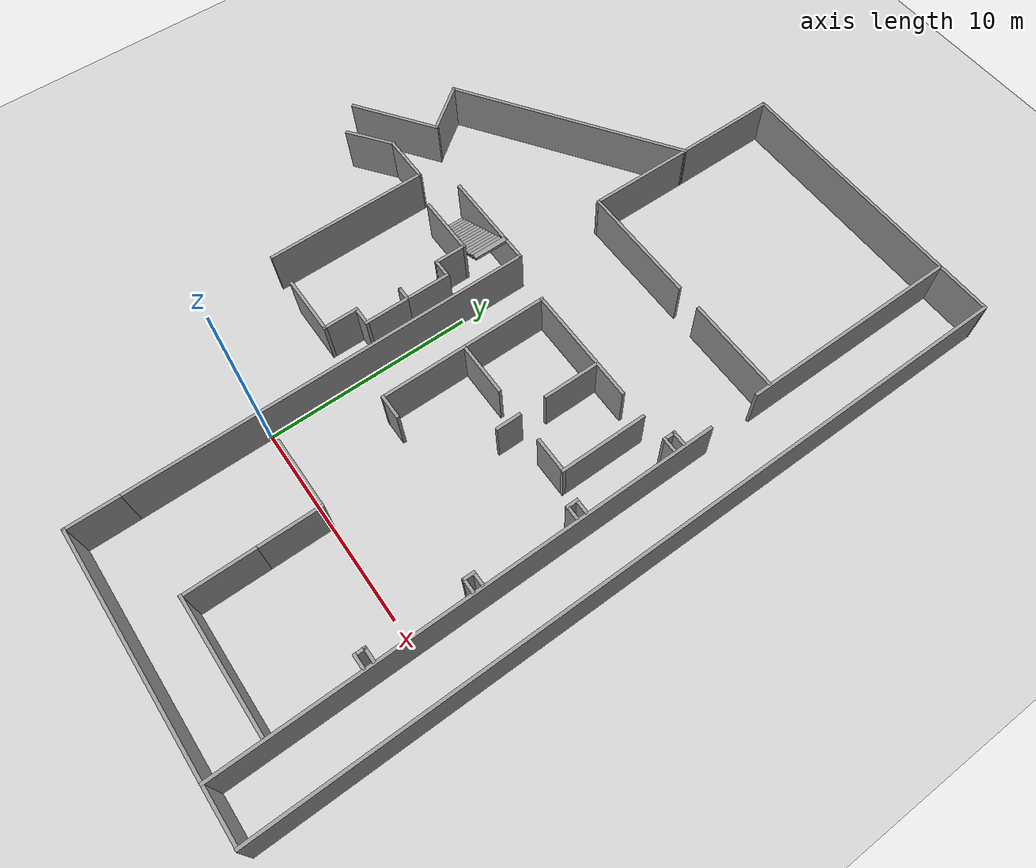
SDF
<sdf version="1.7">
 <world name="default">
  <light name="sun" type="directional">
   <pose>0 0 10 0 -0 0</pose>
   <diffuse>0.8 0.8 0.8 1</diffuse>
   <specular>0.2 0.2 0.2 1</specular>
   <attenuation>
    <range>1000</range>
    <constant>0.9</constant>
    <linear>0.01</linear>
    <quadratic>0.001</quadratic>
   </attenuation>
   <direction>-0.5 0.1 -0.9</direction>
   <spot><inner_angle>0</inner_angle><outer_angle>0</outer_angle><falloff>0</falloff></spot>
  </light>
  <model name="ground_plane">
   <static>1</static>
   <link name="link">
    <collision name="collision">
     <geometry><plane><normal>0 0 1</normal><size>100 100</size></plane></geometry>
     <surface>
      <contact><collide_bitmask>65535</collide_bitmask></contact>
      <friction><ode><mu>100</mu><mu2>50</mu2></ode></friction>
     </surface>
    </collision>
    <visual name="visual">
     <cast_shadows>0</cast_shadows>
     <geometry><plane><normal>0 0 1</normal><size>100 100</size></plane></geometry>
     <material>
      <script><uri>file://media/materials/scripts/gazebo.material</uri><name>Gazebo/Grey</name></script>
     </material>
    </visual>
   </link>
  </model>
  <gravity>0 0 -9.8</gravity>
  <magnetic_field>6e-06 2.3e-05 -4.2e-05</magnetic_field>
  <atmosphere type="adiabatic"/>
  <physics type="ode">
   <max_step_size>0.001</max_step_size>
   <real_time_factor>1</real_time_factor>
   <real_time_update_rate>1000</real_time_update_rate>
  </physics>
  <scene><ambient>0.4 0.4 0.4 1</ambient><background>0.7 0.7 0.7 1</background><shadows>1</shadows></scene>
  <spherical_coordinates>
   <surface_model>EARTH_WGS84</surface_model>
   <latitude_deg>0</latitude_deg>
   <longitude_deg>0</longitude_deg>
   <elevation>0</elevation>
   <heading_deg>0</heading_deg>
  </spherical_coordinates>
  <model name="plan1">
   <pose>1.10898 9.73229 0 0 -0 0</pose>
   <link name="Stairs_2">
    <visual name="Stairs_2_Visual_0">
     <pose>-5.78382 2.74089 0.083333 0 -0 1.5708</pose>
     <geometry><box><size>1.71686 0.252577 0.166667</size></box></geometry>
     <material>
      <script><uri>file://media/materials/scripts/gazebo.material</uri><name>Gazebo/Grey</name></script>
      <ambient>1 1 1 1</ambient>
     </material>
     <meta><layer>0</layer></meta>
    </visual>
    <collision name="Stairs_2_Collision_0">
     <geometry><box><size>1.71686 0.252577 0.166667</size></box></geometry>
     <pose>-5.78382 2.74089 0.083333 0 -0 1.5708</pose>
    </collision>
    <visual name="Stairs_2_Visual_1">
     <pose>-5.53125 2.74089 0.25 0 -0 1.5708</pose>
     <geometry><box><size>1.71686 0.252577 0.166667</size></box></geometry>
     <material>
      <script><uri>file://media/materials/scripts/gazebo.material</uri><name>Gazebo/Grey</name></script>
      <ambient>1 1 1 1</ambient>
     </material>
     <meta><layer>0</layer></meta>
    </visual>
    <collision name="Stairs_2_Collision_1">
     <geometry><box><size>1.71686 0.252577 0.166667</size></box></geometry>
     <pose>-5.53125 2.74089 0.25 0 -0 1.5708</pose>
    </collision>
    <visual name="Stairs_2_Visual_2">
     <pose>-5.27867 2.74089 0.416667 0 -0 1.5708</pose>
     <geometry><box><size>1.71686 0.252577 0.166667</size></box></geometry>
     <material>
      <script><uri>file://media/materials/scripts/gazebo.material</uri><name>Gazebo/Grey</name></script>
      <ambient>1 1 1 1</ambient>
     </material>
     <meta><layer>0</layer></meta>
    </visual>
    <collision name="Stairs_2_Collision_2">
     <geometry><box><size>1.71686 0.252577 0.166667</size></box></geometry>
     <pose>-5.27867 2.74089 0.416667 0 -0 1.5708</pose>
    </collision>
    <visual name="Stairs_2_Visual_3">
     <pose>-5.02609 2.74089 0.583333 0 -0 1.5708</pose>
     <geometry><box><size>1.71686 0.252577 0.166667</size></box></geometry>
     <material>
      <script><uri>file://media/materials/scripts/gazebo.material</uri><name>Gazebo/Grey</name></script>
      <ambient>1 1 1 1</ambient>
     </material>
     <meta><layer>0</layer></meta>
    </visual>
    <collision name="Stairs_2_Collision_3">
     <geometry><box><size>1.71686 0.252577 0.166667</size></box></geometry>
     <pose>-5.02609 2.74089 0.583333 0 -0 1.5708</pose>
    </collision>
    <visual name="Stairs_2_Visual_4">
     <pose>-4.77351 2.74089 0.75 0 -0 1.5708</pose>
     <geometry><box><size>1.71686 0.252577 0.166667</size></box></geometry>
     <material>
      <script><uri>file://media/materials/scripts/gazebo.material</uri><name>Gazebo/Grey</name></script>
      <ambient>1 1 1 1</ambient>
     </material>
     <meta><layer>0</layer></meta>
    </visual>
    <collision name="Stairs_2_Collision_4">
     <geometry><box><size>1.71686 0.252577 0.166667</size></box></geometry>
     <pose>-4.77351 2.74089 0.75 0 -0 1.5708</pose>
    </collision>
    <visual name="Stairs_2_Visual_5">
     <pose>-4.52094 2.74089 0.916667 0 -0 1.5708</pose>
     <geometry><box><size>1.71686 0.252577 0.166667</size></box></geometry>
     <material>
      <script><uri>file://media/materials/scripts/gazebo.material</uri><name>Gazebo/Grey</name></script>
      <ambient>1 1 1 1</ambient>
     </material>
     <meta><layer>0</layer></meta>
    </visual>
    <collision name="Stairs_2_Collision_5">
     <geometry><box><size>1.71686 0.252577 0.166667</size></box></geometry>
     <pose>-4.52094 2.74089 0.916667 0 -0 1.5708</pose>
    </collision>
    <visual name="Stairs_2_Visual_6">
     <pose>-4.26836 2.74089 1.08333 0 -0 1.5708</pose>
     <geometry><box><size>1.71686 0.252577 0.166667</size></box></geometry>
     <material>
      <script><uri>file://media/materials/scripts/gazebo.material</uri><name>Gazebo/Grey</name></script>
      <ambient>1 1 1 1</ambient>
     </material>
     <meta><layer>0</layer></meta>
    </visual>
    <collision name="Stairs_2_Collision_6">
     <geometry><box><size>1.71686 0.252577 0.166667</size></box></geometry>
     <pose>-4.26836 2.74089 1.08333 0 -0 1.5708</pose>
    </collision>
    <visual name="Stairs_2_Visual_7">
     <pose>-4.01578 2.74089 1.25 0 -0 1.5708</pose>
     <geometry><box><size>1.71686 0.252577 0.166667</size></box></geometry>
     <material>
      <script><uri>file://media/materials/scripts/gazebo.material</uri><name>Gazebo/Grey</name></script>
      <ambient>1 1 1 1</ambient>
     </material>
     <meta><layer>0</layer></meta>
    </visual>
    <collision name="Stairs_2_Collision_7">
     <geometry><box><size>1.71686 0.252577 0.166667</size></box></geometry>
     <pose>-4.01578 2.74089 1.25 0 -0 1.5708</pose>
    </collision>
    <visual name="Stairs_2_Visual_8">
     <pose>-3.76321 2.74089 1.41667 0 -0 1.5708</pose>
     <geometry><box><size>1.71686 0.252577 0.166667</size></box></geometry>
     <material>
      <script><uri>file://media/materials/scripts/gazebo.material</uri><name>Gazebo/Grey</name></script>
      <ambient>1 1 1 1</ambient>
     </material>
     <meta><layer>0</layer></meta>
    </visual>
    <collision name="Stairs_2_Collision_8">
     <geometry><box><size>1.71686 0.252577 0.166667</size></box></geometry>
     <pose>-3.76321 2.74089 1.41667 0 -0 1.5708</pose>
    </collision>
    <visual name="Stairs_2_Visual_9">
     <pose>-3.51063 2.74089 1.58333 0 -0 1.5708</pose>
     <geometry><box><size>1.71686 0.252577 0.166667</size></box></geometry>
     <material>
      <script><uri>file://media/materials/scripts/gazebo.material</uri><name>Gazebo/Grey</name></script>
      <ambient>1 1 1 1</ambient>
     </material>
     <meta><layer>0</layer></meta>
    </visual>
    <collision name="Stairs_2_Collision_9">
     <geometry><box><size>1.71686 0.252577 0.166667</size></box></geometry>
     <pose>-3.51063 2.74089 1.58333 0 -0 1.5708</pose>
    </collision>
    <visual name="Stairs_2_Visual_10">
     <pose>-3.25805 2.74089 1.75 0 -0 1.5708</pose>
     <geometry><box><size>1.71686 0.252577 0.166667</size></box></geometry>
     <material>
      <script><uri>file://media/materials/scripts/gazebo.material</uri><name>Gazebo/Grey</name></script>
      <ambient>1 1 1 1</ambient>
     </material>
     <meta><layer>0</layer></meta>
    </visual>
    <collision name="Stairs_2_Collision_10">
     <geometry><box><size>1.71686 0.252577 0.166667</size></box></geometry>
     <pose>-3.25805 2.74089 1.75 0 -0 1.5708</pose>
    </collision>
    <visual name="Stairs_2_Visual_11">
     <pose>-3.00547 2.74089 1.91667 0 -0 1.5708</pose>
     <geometry><box><size>1.71686 0.252577 0.166667</size></box></geometry>
     <material>
      <script><uri>file://media/materials/scripts/gazebo.material</uri><name>Gazebo/Grey</name></script>
      <ambient>1 1 1 1</ambient>
     </material>
     <meta><layer>0</layer></meta>
    </visual>
    <collision name="Stairs_2_Collision_11">
     <geometry><box><size>1.71686 0.252577 0.166667</size></box></geometry>
     <pose>-3.00547 2.74089 1.91667 0 -0 1.5708</pose>
    </collision>
    <visual name="Stairs_2_Visual_12">
     <pose>-2.7529 2.74089 2.08333 0 -0 1.5708</pose>
     <geometry><box><size>1.71686 0.252577 0.166667</size></box></geometry>
     <material>
      <script><uri>file://media/materials/scripts/gazebo.material</uri><name>Gazebo/Grey</name></script>
      <ambient>1 1 1 1</ambient>
     </material>
     <meta><layer>0</layer></meta>
    </visual>
    <collision name="Stairs_2_Collision_12">
     <geometry><box><size>1.71686 0.252577 0.166667</size></box></geometry>
     <pose>-2.7529 2.74089 2.08333 0 -0 1.5708</pose>
    </collision>
    <visual name="Stairs_2_Visual_13">
     <pose>-2.50032 2.74089 2.25 0 -0 1.5708</pose>
     <geometry><box><size>1.71686 0.252577 0.166667</size></box></geometry>
     <material>
      <script><uri>file://media/materials/scripts/gazebo.material</uri><name>Gazebo/Grey</name></script>
      <ambient>1 1 1 1</ambient>
     </material>
     <meta><layer>0</layer></meta>
    </visual>
    <collision name="Stairs_2_Collision_13">
     <geometry><box><size>1.71686 0.252577 0.166667</size></box></geometry>
     <pose>-2.50032 2.74089 2.25 0 -0 1.5708</pose>
    </collision>
    <visual name="Stairs_2_Visual_14">
     <pose>-2.24774 2.74089 2.41667 0 -0 1.5708</pose>
     <geometry><box><size>1.71686 0.252577 0.166667</size></box></geometry>
     <material>
      <script><uri>file://media/materials/scripts/gazebo.material</uri><name>Gazebo/Grey</name></script>
      <ambient>1 1 1 1</ambient>
     </material>
     <meta><layer>0</layer></meta>
    </visual>
    <collision name="Stairs_2_Collision_14">
     <geometry><box><size>1.71686 0.252577 0.166667</size></box></geometry>
     <pose>-2.24774 2.74089 2.41667 0 -0 1.5708</pose>
    </collision>
   </link>
   <link name="Wall_102">
    <collision name="Wall_102_Collision">
     <geometry><box><size>1.6 0.15 2.5</size></box></geometry>
     <pose>0 0 1.25 0 -0 0</pose>
    </collision>
    <visual name="Wall_102_Visual">
     <pose>0 0 1.25 0 -0 0</pose>
     <geometry><box><size>1.6 0.15 2.5</size></box></geometry>
     <material>
      <script><uri>file://media/materials/scripts/gazebo.material</uri><name>Gazebo/Grey</name></script>
      <ambient>1 1 1 1</ambient>
     </material>
     <meta><layer>0</layer></meta>
    </visual>
    <pose>-3.01553 1.09256 0 0 -0 1.5708</pose>
   </link>
   <link name="Wall_104">
    <collision name="Wall_104_Collision">
     <geometry><box><size>3 0.15 2.5</size></box></geometry>
     <pose>0 0 1.25 0 -0 0</pose>
    </collision>
    <visual name="Wall_104_Visual">
     <pose>0 0 1.25 0 -0 0</pose>
     <geometry><box><size>3 0.15 2.5</size></box></geometry>
     <material>
      <script><uri>file://media/materials/scripts/gazebo.material</uri><name>Gazebo/Grey</name></script>
      <ambient>1 1 1 1</ambient>
     </material>
     <meta><layer>0</layer></meta>
    </visual>
    <pose>-4.44053 1.81756 0 0 -0 3.14159</pose>
   </link>
   <link name="Wall_108">
    <collision name="Wall_108_Collision">
     <geometry><box><size>5.9 0.15 2.5</size></box></geometry>
     <pose>0 0 1.25 0 -0 0</pose>
    </collision>
    <visual name="Wall_108_Visual">
     <pose>0 0 1.25 0 -0 0</pose>
     <geometry><box><size>5.9 0.15 2.5</size></box></geometry>
     <material>
      <script><uri>file://media/materials/scripts/gazebo.material</uri><name>Gazebo/Grey</name></script>
      <ambient>1 1 1 1</ambient>
     </material>
     <meta><layer>0</layer></meta>
    </visual>
    <pose>4.21747 3.02356 0 0 -0 0</pose>
   </link>
   <link name="Wall_110">
    <collision name="Wall_110_Collision">
     <geometry><box><size>4.25 0.15 2.5</size></box></geometry>
     <pose>0 0 1.25 0 -0 0</pose>
    </collision>
    <visual name="Wall_110_Visual">
     <pose>0 0 1.25 0 -0 0</pose>
     <geometry><box><size>4.25 0.15 2.5</size></box></geometry>
     <material>
      <script><uri>file://media/materials/scripts/gazebo.material</uri><name>Gazebo/Grey</name></script>
      <ambient>1 1 1 1</ambient>
     </material>
     <meta><layer>0</layer></meta>
    </visual>
    <pose>1.34247 0.973558 0 0 -0 -1.5708</pose>
   </link>
   <link name="Wall_112">
    <collision name="Wall_112_Collision">
     <geometry><box><size>4.25 0.15 2.5</size></box></geometry>
     <pose>0 0 1.25 0 -0 0</pose>
    </collision>
    <visual name="Wall_112_Visual">
     <pose>0 0 1.25 0 -0 0</pose>
     <geometry><box><size>4.25 0.15 2.5</size></box></geometry>
     <material>
      <script><uri>file://media/materials/scripts/gazebo.material</uri><name>Gazebo/Grey</name></script>
      <ambient>1 1 1 1</ambient>
     </material>
     <meta><layer>0</layer></meta>
    </visual>
    <pose>1.34247 -3.12644 0 0 -0 -1.5708</pose>
   </link>
   <link name="Wall_113">
    <collision name="Wall_113_Collision">
     <geometry><box><size>1.25 0.15 2.5</size></box></geometry>
     <pose>0 0 1.25 0 -0 0</pose>
    </collision>
    <visual name="Wall_113_Visual">
     <pose>0 0 1.25 0 -0 0</pose>
     <geometry><box><size>1.25 0.15 2.5</size></box></geometry>
     <material>
      <script><uri>file://media/materials/scripts/gazebo.material</uri><name>Gazebo/Grey</name></script>
      <ambient>1 1 1 1</ambient>
     </material>
     <meta><layer>0</layer></meta>
    </visual>
    <pose>1.89247 -5.17644 0 0 -0 0</pose>
   </link>
   <link name="Wall_115">
    <collision name="Wall_115_Collision">
     <geometry><box><size>2.75 0.15 2.5</size></box></geometry>
     <pose>0 0 1.25 0 -0 0</pose>
    </collision>
    <visual name="Wall_115_Visual">
     <pose>0 0 1.25 0 -0 0</pose>
     <geometry><box><size>2.75 0.15 2.5</size></box></geometry>
     <material>
      <script><uri>file://media/materials/scripts/gazebo.material</uri><name>Gazebo/Grey</name></script>
      <ambient>1 1 1 1</ambient>
     </material>
     <meta><layer>0</layer></meta>
    </visual>
    <pose>2.64247 -1.07644 0 0 -0 0</pose>
   </link>
   <link name="Wall_117">
    <collision name="Wall_117_Collision">
     <geometry><box><size>2.75 0.15 2.5</size></box></geometry>
     <pose>0 0 1.25 0 -0 0</pose>
    </collision>
    <visual name="Wall_117_Visual">
     <pose>0 0 1.25 0 -0 0</pose>
     <geometry><box><size>2.75 0.15 2.5</size></box></geometry>
     <material>
      <script><uri>file://media/materials/scripts/gazebo.material</uri><name>Gazebo/Grey</name></script>
      <ambient>1 1 1 1</ambient>
     </material>
     <meta><layer>0</layer></meta>
    </visual>
    <pose>5.34473 1.63895 0 0 -0 1.5708</pose>
   </link>
   <link name="Wall_119">
    <collision name="Wall_119_Collision">
     <geometry><box><size>1.25 0.15 2.5</size></box></geometry>
     <pose>0 0 1.25 0 -0 0</pose>
    </collision>
    <visual name="Wall_119_Visual">
     <pose>0 0 1.25 0 -0 0</pose>
     <geometry><box><size>1.25 0.15 2.5</size></box></geometry>
     <material>
      <script><uri>file://media/materials/scripts/gazebo.material</uri><name>Gazebo/Grey</name></script>
      <ambient>1 1 1 1</ambient>
     </material>
     <meta><layer>0</layer></meta>
    </visual>
    <pose>5.36213 -1.59766 0 0 -0 -1.5708</pose>
   </link>
   <link name="Wall_122">
    <collision name="Wall_122_Collision">
     <geometry><box><size>4.25 0.15 2.5</size></box></geometry>
     <pose>0 0 1.25 0 -0 0</pose>
    </collision>
    <visual name="Wall_122_Visual">
     <pose>0 0 1.25 0 -0 0</pose>
     <geometry><box><size>4.25 0.15 2.5</size></box></geometry>
     <material>
      <script><uri>file://media/materials/scripts/gazebo.material</uri><name>Gazebo/Grey</name></script>
      <ambient>1 1 1 1</ambient>
     </material>
     <meta><layer>0</layer></meta>
    </visual>
    <pose>8.46039 0.972506 0 0 -0 -1.57076</pose>
   </link>
   <link name="Wall_124">
    <collision name="Wall_124_Collision">
     <geometry><box><size>1.8 0.15 2.5</size></box></geometry>
     <pose>0 0 1.25 0 -0 0</pose>
    </collision>
    <visual name="Wall_124_Visual">
     <pose>0 0 1.25 0 -0 0</pose>
     <geometry><box><size>1.8 0.15 2.5</size></box></geometry>
     <material>
      <script><uri>file://media/materials/scripts/gazebo.material</uri><name>Gazebo/Grey</name></script>
      <ambient>1 1 1 1</ambient>
     </material>
     <meta><layer>0</layer></meta>
    </visual>
    <pose>7.63547 -1.07744 0 0 -0 3.14159</pose>
   </link>
   <link name="Wall_126">
    <collision name="Wall_126_Collision">
     <geometry><box><size>0.75 0.15 2.5</size></box></geometry>
     <pose>0 0 1.25 0 -0 0</pose>
    </collision>
    <visual name="Wall_126_Visual">
     <pose>0 0 1.25 0 -0 0</pose>
     <geometry><box><size>0.75 0.15 2.5</size></box></geometry>
     <material>
      <script><uri>file://media/materials/scripts/gazebo.material</uri><name>Gazebo/Grey</name></script>
      <ambient>1 1 1 1</ambient>
     </material>
     <meta><layer>0</layer></meta>
    </visual>
    <pose>10.1077 3.59199 0 0 -0 3.14159</pose>
   </link>
   <link name="Wall_127">
    <collision name="Wall_127_Collision">
     <geometry><box><size>0.641785 0.15 2.5</size></box></geometry>
     <pose>0 0 1.25 0 -0 0</pose>
    </collision>
    <visual name="Wall_127_Visual">
     <pose>0 0 1.25 0 -0 0</pose>
     <geometry><box><size>0.641785 0.15 2.5</size></box></geometry>
     <material>
      <script><uri>file://media/materials/scripts/gazebo.material</uri><name>Gazebo/Grey</name></script>
      <ambient>1 1 1 1</ambient>
     </material>
     <meta><layer>0</layer></meta>
    </visual>
    <pose>9.79998 3.3464 0 0 -0 -1.56586</pose>
   </link>
   <link name="Wall_128">
    <collision name="Wall_128_Collision">
     <geometry><box><size>0.75 0.15 2.5</size></box></geometry>
     <pose>0 0 1.25 0 -0 0</pose>
    </collision>
    <visual name="Wall_128_Visual">
     <pose>0 0 1.25 0 -0 0</pose>
     <geometry><box><size>0.75 0.15 2.5</size></box></geometry>
     <material>
      <script><uri>file://media/materials/scripts/gazebo.material</uri><name>Gazebo/Grey</name></script>
      <ambient>1 1 1 1</ambient>
     </material>
     <meta><layer>0</layer></meta>
    </visual>
    <pose>10.1012 3.10081 0 0 -0 0</pose>
   </link>
   <link name="Wall_131">
    <collision name="Wall_131_Collision">
     <geometry><box><size>0.770245 0.15 2.5</size></box></geometry>
     <pose>0 0 1.25 0 -0 0</pose>
    </collision>
    <visual name="Wall_131_Visual">
     <pose>0 0 1.25 0 -0 0</pose>
     <geometry><box><size>0.770245 0.15 2.5</size></box></geometry>
     <material>
      <script><uri>file://media/materials/scripts/gazebo.material</uri><name>Gazebo/Grey</name></script>
      <ambient>1 1 1 1</ambient>
     </material>
     <meta><layer>0</layer></meta>
    </visual>
    <pose>10.1245 -1.41028 0 0 -0 -3.14107</pose>
   </link>
   <link name="Wall_132">
    <collision name="Wall_132_Collision">
     <geometry><box><size>0.6 0.15 2.5</size></box></geometry>
     <pose>0 0 1.25 0 -0 0</pose>
    </collision>
    <visual name="Wall_132_Visual">
     <pose>0 0 1.25 0 -0 0</pose>
     <geometry><box><size>0.6 0.15 2.5</size></box></geometry>
     <material>
      <script><uri>file://media/materials/scripts/gazebo.material</uri><name>Gazebo/Grey</name></script>
      <ambient>1 1 1 1</ambient>
     </material>
     <meta><layer>0</layer></meta>
    </visual>
    <pose>9.81447 -1.63544 0 0 -0 -1.5708</pose>
   </link>
   <link name="Wall_134">
    <collision name="Wall_134_Collision">
     <geometry><box><size>0.75 0.15 2.5</size></box></geometry>
     <pose>0 0 1.25 0 -0 0</pose>
    </collision>
    <visual name="Wall_134_Visual">
     <pose>0 0 1.25 0 -0 0</pose>
     <geometry><box><size>0.75 0.15 2.5</size></box></geometry>
     <material>
      <script><uri>file://media/materials/scripts/gazebo.material</uri><name>Gazebo/Grey</name></script>
      <ambient>1 1 1 1</ambient>
     </material>
     <meta><layer>0</layer></meta>
    </visual>
    <pose>10.1145 -1.86044 0 0 -0 0</pose>
   </link>
   <link name="Wall_136">
    <collision name="Wall_136_Collision">
     <geometry><box><size>0.75 0.15 2.5</size></box></geometry>
     <pose>0 0 1.25 0 -0 0</pose>
    </collision>
    <visual name="Wall_136_Visual">
     <pose>0 0 1.25 0 -0 0</pose>
     <geometry><box><size>0.75 0.15 2.5</size></box></geometry>
     <material>
      <script><uri>file://media/materials/scripts/gazebo.material</uri><name>Gazebo/Grey</name></script>
      <ambient>1 1 1 1</ambient>
     </material>
     <meta><layer>0</layer></meta>
    </visual>
    <pose>10.1505 -6.38694 0 0 -0 -3.13659</pose>
   </link>
   <link name="Wall_137">
    <collision name="Wall_137_Collision">
     <geometry><box><size>0.6 0.15 2.5</size></box></geometry>
     <pose>0 0 1.25 0 -0 0</pose>
    </collision>
    <visual name="Wall_137_Visual">
     <pose>0 0 1.25 0 -0 0</pose>
     <geometry><box><size>0.6 0.15 2.5</size></box></geometry>
     <material>
      <script><uri>file://media/materials/scripts/gazebo.material</uri><name>Gazebo/Grey</name></script>
      <ambient>1 1 1 1</ambient>
     </material>
     <meta><layer>0</layer></meta>
    </visual>
    <pose>9.84647 -6.61344 0 0 -0 -1.58857</pose>
   </link>
   <link name="Wall_138">
    <collision name="Wall_138_Collision">
     <geometry><box><size>0.75 0.15 2.5</size></box></geometry>
     <pose>0 0 1.25 0 -0 0</pose>
    </collision>
    <visual name="Wall_138_Visual">
     <pose>0 0 1.25 0 -0 0</pose>
     <geometry><box><size>0.75 0.15 2.5</size></box></geometry>
     <material>
      <script><uri>file://media/materials/scripts/gazebo.material</uri><name>Gazebo/Grey</name></script>
      <ambient>1 1 1 1</ambient>
     </material>
     <meta><layer>0</layer></meta>
    </visual>
    <pose>10.1425 -6.83844 0 0 -0 0</pose>
   </link>
   <link name="Wall_143">
    <collision name="Wall_143_Collision">
     <geometry><box><size>0.75 0.15 2.5</size></box></geometry>
     <pose>0 0 1.25 0 -0 0</pose>
    </collision>
    <visual name="Wall_143_Visual">
     <pose>0 0 1.25 0 -0 0</pose>
     <geometry><box><size>0.75 0.15 2.5</size></box></geometry>
     <material>
      <script><uri>file://media/materials/scripts/gazebo.material</uri><name>Gazebo/Grey</name></script>
      <ambient>1 1 1 1</ambient>
     </material>
     <meta><layer>0</layer></meta>
    </visual>
    <pose>10.1535 -11.2774 0 0 -0 3.14159</pose>
   </link>
   <link name="Wall_144">
    <collision name="Wall_144_Collision">
     <geometry><box><size>0.6 0.15 2.5</size></box></geometry>
     <pose>0 0 1.25 0 -0 0</pose>
    </collision>
    <visual name="Wall_144_Visual">
     <pose>0 0 1.25 0 -0 0</pose>
     <geometry><box><size>0.6 0.15 2.5</size></box></geometry>
     <material>
      <script><uri>file://media/materials/scripts/gazebo.material</uri><name>Gazebo/Grey</name></script>
      <ambient>1 1 1 1</ambient>
     </material>
     <meta><layer>0</layer></meta>
    </visual>
    <pose>9.85347 -11.5024 0 0 -0 -1.5708</pose>
   </link>
   <link name="Wall_145">
    <collision name="Wall_145_Collision">
     <geometry><box><size>0.744104 0.15 2.5</size></box></geometry>
     <pose>0 0 1.25 0 -0 0</pose>
    </collision>
    <visual name="Wall_145_Visual">
     <pose>0 0 1.25 0 -0 0</pose>
     <geometry><box><size>0.744104 0.15 2.5</size></box></geometry>
     <material>
      <script><uri>file://media/materials/scripts/gazebo.material</uri><name>Gazebo/Grey</name></script>
      <ambient>1 1 1 1</ambient>
     </material>
     <meta><layer>0</layer></meta>
    </visual>
    <pose>10.1505 -11.7274 0 0 -0 0</pose>
   </link>
   <link name="Wall_147">
    <collision name="Wall_147_Collision">
     <geometry><box><size>3.52658 0.15 2.5</size></box></geometry>
     <pose>0 0 1.25 0 -0 0</pose>
    </collision>
    <visual name="Wall_147_Visual">
     <pose>0 0 1.25 0 -0 0</pose>
     <geometry><box><size>3.52658 0.15 2.5</size></box></geometry>
     <material>
      <script><uri>file://media/materials/scripts/gazebo.material</uri><name>Gazebo/Grey</name></script>
      <ambient>1 1 1 1</ambient>
     </material>
     <meta><layer>0</layer></meta>
    </visual>
    <pose>4.03847 -14.2365 0 0 -0 1.5708</pose>
   </link>
   <link name="Wall_152">
    <collision name="Wall_152_Collision">
     <geometry><box><size>3.5 0.15 2.5</size></box></geometry>
     <pose>0 0 1.25 0 -0 0</pose>
    </collision>
    <visual name="Wall_152_Visual">
     <pose>0 0 1.25 0 -0 0</pose>
     <geometry><box><size>3.5 0.15 2.5</size></box></geometry>
     <material>
      <script><uri>file://media/materials/scripts/gazebo.material</uri><name>Gazebo/Grey</name></script>
      <ambient>1 1 1 1</ambient>
     </material>
     <meta><layer>0</layer></meta>
    </visual>
    <pose>2.21347 -9.69824 0 0 -0 3.14159</pose>
   </link>
   <link name="Wall_162">
    <collision name="Wall_162_Collision">
     <geometry><box><size>12 0.15 2.5</size></box></geometry>
     <pose>0 0 1.25 0 -0 0</pose>
    </collision>
    <visual name="Wall_162_Visual">
     <pose>0 0 1.25 0 -0 0</pose>
     <geometry><box><size>12 0.15 2.5</size></box></geometry>
     <material>
      <script><uri>file://media/materials/scripts/gazebo.material</uri><name>Gazebo/Grey</name></script>
      <ambient>1 1 1 1</ambient>
     </material>
     <meta><layer>0</layer></meta>
    </visual>
    <pose>4.54802 18.3957 0 0 -0 3.14159</pose>
   </link>
   <link name="Wall_167">
    <collision name="Wall_167_Collision">
     <geometry><box><size>6 0.15 2.5</size></box></geometry>
     <pose>0 0 1.25 0 -0 0</pose>
    </collision>
    <visual name="Wall_167_Visual">
     <pose>0 0 1.25 0 -0 0</pose>
     <geometry><box><size>6 0.15 2.5</size></box></geometry>
     <material>
      <script><uri>file://media/materials/scripts/gazebo.material</uri><name>Gazebo/Grey</name></script>
      <ambient>1 1 1 1</ambient>
     </material>
     <meta><layer>0</layer></meta>
    </visual>
    <pose>1.51839 8.27388 0 0 -0 3.14159</pose>
   </link>
   <link name="Wall_170">
    <collision name="Wall_170_Collision">
     <geometry><box><size>5.24002 0.15 2.5</size></box></geometry>
     <pose>0 0 1.25 0 -0 0</pose>
    </collision>
    <visual name="Wall_170_Visual">
     <pose>0 0 1.25 0 -0 0</pose>
     <geometry><box><size>5.24002 0.15 2.5</size></box></geometry>
     <material>
      <script><uri>file://media/materials/scripts/gazebo.material</uri><name>Gazebo/Grey</name></script>
      <ambient>1 1 1 1</ambient>
     </material>
     <meta><layer>0</layer></meta>
    </visual>
    <pose>-1.38857 10.8086 0 0 -0 1.56371</pose>
   </link>
   <link name="Wall_171">
    <collision name="Wall_171_Collision">
     <geometry><box><size>5.15 0.15 2.5</size></box></geometry>
     <pose>0 0 1.25 0 -0 0</pose>
    </collision>
    <visual name="Wall_171_Visual">
     <pose>0 0 1.25 0 -0 0</pose>
     <geometry><box><size>5.15 0.15 2.5</size></box></geometry>
     <material>
      <script><uri>file://media/materials/scripts/gazebo.material</uri><name>Gazebo/Grey</name></script>
      <ambient>1 1 1 1</ambient>
     </material>
     <meta><layer>0</layer></meta>
    </visual>
    <pose>-1.37053 15.8536 0 0 -0 1.5708</pose>
   </link>
   <link name="Wall_208">
    <collision name="Wall_208_Collision">
     <geometry><box><size>36.95 0.15 2.5</size></box></geometry>
     <pose>0 0 1.25 0 -0 0</pose>
    </collision>
    <visual name="Wall_208_Visual">
     <pose>0 0 1.25 0 -0 0</pose>
     <geometry><box><size>36.95 0.15 2.5</size></box></geometry>
     <material>
      <script><uri>file://media/materials/scripts/gazebo.material</uri><name>Gazebo/Grey</name></script>
      <ambient>1 1 1 1</ambient>
     </material>
     <meta><layer>0</layer></meta>
    </visual>
    <pose>13.1427 0.001285 0 0 -0 -1.5708</pose>
   </link>
   <link name="Wall_22">
    <collision name="Wall_22_Collision">
     <geometry><box><size>1 0.15 2.5</size></box></geometry>
     <pose>0 0 1.25 0 -0 0</pose>
    </collision>
    <visual name="Wall_22_Visual">
     <pose>0 0 1.25 0 -0 0</pose>
     <geometry><box><size>1 0.15 2.5</size></box></geometry>
     <material>
      <script><uri>file://media/materials/scripts/gazebo.material</uri><name>Gazebo/Grey</name></script>
      <ambient>1 1 1 1</ambient>
     </material>
     <meta><layer>0</layer></meta>
    </visual>
    <pose>-2.59057 0.367599 0 0 -0 9.7e-05</pose>
   </link>
   <link name="Wall_222">
    <collision name="Wall_222_Collision">
     <geometry><box><size>4.75 0.15 2.5</size></box></geometry>
     <pose>0 0 1.25 0 -0 0</pose>
    </collision>
    <visual name="Wall_222_Visual">
     <pose>0 0 1.25 0 -0 0</pose>
     <geometry><box><size>4.75 0.15 2.5</size></box></geometry>
     <material>
      <script><uri>file://media/materials/scripts/gazebo.material</uri><name>Gazebo/Grey</name></script>
      <ambient>1 1 1 1</ambient>
     </material>
     <meta><layer>0</layer></meta>
    </visual>
    <pose>8.09339 8.27388 0 0 -0 0</pose>
   </link>
   <link name="Wall_224">
    <collision name="Wall_224_Collision">
     <geometry><box><size>23.498 0.15 2.5</size></box></geometry>
     <pose>0 0 1.25 0 -0 0</pose>
    </collision>
    <visual name="Wall_224_Visual">
     <pose>0 0 1.25 0 -0 0</pose>
     <geometry><box><size>23.498 0.15 2.5</size></box></geometry>
     <material>
      <script><uri>file://media/materials/scripts/gazebo.material</uri><name>Gazebo/Grey</name></script>
      <ambient>1 1 1 1</ambient>
     </material>
     <meta><layer>0</layer></meta>
    </visual>
    <pose>10.5328 -6.72433 0 0 -0 1.57189</pose>
   </link>
   <link name="Wall_23">
    <collision name="Wall_23_Collision">
     <geometry><box><size>2.24871 0.15 2.5</size></box></geometry>
     <pose>0 0 1.25 0 -0 0</pose>
    </collision>
    <visual name="Wall_23_Visual">
     <pose>0 0 1.25 0 -0 0</pose>
     <geometry><box><size>2.24871 0.15 2.5</size></box></geometry>
     <material>
      <script><uri>file://media/materials/scripts/gazebo.material</uri><name>Gazebo/Grey</name></script>
      <ambient>1 1 1 1</ambient>
     </material>
     <meta><layer>0</layer></meta>
    </visual>
    <pose>-2.16017 -0.68171 0 0 -0 -1.57209</pose>
   </link>
   <link name="Wall_232">
    <collision name="Wall_232_Collision">
     <geometry><box><size>11 0.15 2.5</size></box></geometry>
     <pose>0 0 1.25 0 -0 0</pose>
    </collision>
    <visual name="Wall_232_Visual">
     <pose>0 0 1.25 0 -0 0</pose>
     <geometry><box><size>11 0.15 2.5</size></box></geometry>
     <material>
      <script><uri>file://media/materials/scripts/gazebo.material</uri><name>Gazebo/Grey</name></script>
      <ambient>1 1 1 1</ambient>
     </material>
     <meta><layer>0</layer></meta>
    </visual>
    <pose>10.473 12.9707 0 0 -0 -1.5708</pose>
   </link>
   <link name="Wall_238">
    <collision name="Wall_238_Collision">
     <geometry><box><size>2.81969 0.15 2.5</size></box></geometry>
     <pose>0 0 1.25 0 -0 0</pose>
    </collision>
    <visual name="Wall_238_Visual">
     <pose>0 0 1.25 0 -0 0</pose>
     <geometry><box><size>2.81969 0.15 2.5</size></box></geometry>
     <material>
      <script><uri>file://media/materials/scripts/gazebo.material</uri><name>Gazebo/Grey</name></script>
      <ambient>1 1 1 1</ambient>
     </material>
     <meta><layer>0</layer></meta>
    </visual>
    <pose>11.8079 18.3985 0 0 -0 0.002095</pose>
   </link>
   <link name="Wall_24">
    <collision name="Wall_24_Collision">
     <geometry><box><size>0.75 0.15 2.5</size></box></geometry>
     <pose>0 0 1.25 0 -0 0</pose>
    </collision>
    <visual name="Wall_24_Visual">
     <pose>0 0 1.25 0 -0 0</pose>
     <geometry><box><size>0.75 0.15 2.5</size></box></geometry>
     <material>
      <script><uri>file://media/materials/scripts/gazebo.material</uri><name>Gazebo/Grey</name></script>
      <ambient>1 1 1 1</ambient>
     </material>
     <meta><layer>0</layer></meta>
    </visual>
    <pose>-2.46153 -1.73106 0 0 -0 3.14159</pose>
   </link>
   <link name="Wall_240">
    <collision name="Wall_240_Collision">
     <geometry><box><size>2.74434 0.15 2.5</size></box></geometry>
     <pose>0 0 1.25 0 -0 0</pose>
    </collision>
    <visual name="Wall_240_Visual">
     <pose>0 0 1.25 0 -0 0</pose>
     <geometry><box><size>2.74434 0.15 2.5</size></box></geometry>
     <material>
      <script><uri>file://media/materials/scripts/gazebo.material</uri><name>Gazebo/Grey</name></script>
      <ambient>1 1 1 1</ambient>
     </material>
     <meta><layer>0</layer></meta>
    </visual>
    <pose>11.8428 -18.3926 0 0 -0 0.004468</pose>
   </link>
   <link name="Wall_242">
    <collision name="Wall_242_Collision">
     <geometry><box><size>6.5 0.15 2.5</size></box></geometry>
     <pose>0 0 1.25 0 -0 0</pose>
    </collision>
    <visual name="Wall_242_Visual">
     <pose>0 0 1.25 0 -0 0</pose>
     <geometry><box><size>6.5 0.15 2.5</size></box></geometry>
     <material>
      <script><uri>file://media/materials/scripts/gazebo.material</uri><name>Gazebo/Grey</name></script>
      <ambient>1 1 1 1</ambient>
     </material>
     <meta><layer>0</layer></meta>
    </visual>
    <pose>7.21347 -15.9115 0 0 -0 0</pose>
   </link>
   <link name="Wall_247">
    <collision name="Wall_247_Collision">
     <geometry><box><size>2.52 0.15 2.5</size></box></geometry>
     <pose>0 0 1.25 0 -0 0</pose>
    </collision>
    <visual name="Wall_247_Visual">
     <pose>0 0 1.25 0 -0 0</pose>
     <geometry><box><size>2.52 0.15 2.5</size></box></geometry>
     <material>
      <script><uri>file://media/materials/scripts/gazebo.material</uri><name>Gazebo/Grey</name></script>
      <ambient>1 1 1 1</ambient>
     </material>
     <meta><layer>0</layer></meta>
    </visual>
    <pose>-1.07853 -17.2164 0 0 -0 -1.5708</pose>
   </link>
   <link name="Wall_249">
    <collision name="Wall_249_Collision">
     <geometry><box><size>11.77 0.15 2.5</size></box></geometry>
     <pose>0 0 1.25 0 -0 0</pose>
    </collision>
    <visual name="Wall_249_Visual">
     <pose>0 0 1.25 0 -0 0</pose>
     <geometry><box><size>11.77 0.15 2.5</size></box></geometry>
     <material>
      <script><uri>file://media/materials/scripts/gazebo.material</uri><name>Gazebo/Grey</name></script>
      <ambient>1 1 1 1</ambient>
     </material>
     <meta><layer>0</layer></meta>
    </visual>
    <pose>4.73547 -18.3984 0 0 -0 3.14159</pose>
   </link>
   <link name="Wall_252">
    <collision name="Wall_252_Collision">
     <geometry><box><size>3 0.15 2.5</size></box></geometry>
     <pose>0 0 1.25 0 -0 0</pose>
    </collision>
    <visual name="Wall_252_Visual">
     <pose>0 0 1.25 0 -0 0</pose>
     <geometry><box><size>3 0.15 2.5</size></box></geometry>
     <material>
      <script><uri>file://media/materials/scripts/gazebo.material</uri><name>Gazebo/Grey</name></script>
      <ambient>1 1 1 1</ambient>
     </material>
     <meta><layer>0</layer></meta>
    </visual>
    <pose>4.03847 -11.1232 0 0 -0 1.5708</pose>
   </link>
   <link name="Wall_28">
    <collision name="Wall_28_Collision">
     <geometry><box><size>0.75 0.15 2.5</size></box></geometry>
     <pose>0 0 1.25 0 -0 0</pose>
    </collision>
    <visual name="Wall_28_Visual">
     <pose>0 0 1.25 0 -0 0</pose>
     <geometry><box><size>0.75 0.15 2.5</size></box></geometry>
     <material>
      <script><uri>file://media/materials/scripts/gazebo.material</uri><name>Gazebo/Grey</name></script>
      <ambient>1 1 1 1</ambient>
     </material>
     <meta><layer>0</layer></meta>
    </visual>
    <pose>-2.46153 -1.73106 0 0 -0 0</pose>
   </link>
   <link name="Wall_29">
    <collision name="Wall_29_Collision">
     <geometry><box><size>2.25 0.15 2.5</size></box></geometry>
     <pose>0 0 1.25 0 -0 0</pose>
    </collision>
    <visual name="Wall_29_Visual">
     <pose>0 0 1.25 0 -0 0</pose>
     <geometry><box><size>2.25 0.15 2.5</size></box></geometry>
     <material>
      <script><uri>file://media/materials/scripts/gazebo.material</uri><name>Gazebo/Grey</name></script>
      <ambient>1 1 1 1</ambient>
     </material>
     <meta><layer>0</layer></meta>
    </visual>
    <pose>-2.16153 -2.78106 0 0 -0 -1.5708</pose>
   </link>
   <link name="Wall_30">
    <collision name="Wall_30_Collision">
     <geometry><box><size>1 0.15 2.5</size></box></geometry>
     <pose>0 0 1.25 0 -0 0</pose>
    </collision>
    <visual name="Wall_30_Visual">
     <pose>0 0 1.25 0 -0 0</pose>
     <geometry><box><size>1 0.15 2.5</size></box></geometry>
     <material>
      <script><uri>file://media/materials/scripts/gazebo.material</uri><name>Gazebo/Grey</name></script>
      <ambient>1 1 1 1</ambient>
     </material>
     <meta><layer>0</layer></meta>
    </visual>
    <pose>-2.58653 -3.83106 0 0 -0 3.14159</pose>
   </link>
   <link name="Wall_32">
    <collision name="Wall_32_Collision">
     <geometry><box><size>1.75 0.15 2.5</size></box></geometry>
     <pose>0 0 1.25 0 -0 0</pose>
    </collision>
    <visual name="Wall_32_Visual">
     <pose>0 0 1.25 0 -0 0</pose>
     <geometry><box><size>1.75 0.15 2.5</size></box></geometry>
     <material>
      <script><uri>file://media/materials/scripts/gazebo.material</uri><name>Gazebo/Grey</name></script>
      <ambient>1 1 1 1</ambient>
     </material>
     <meta><layer>0</layer></meta>
    </visual>
    <pose>-3.01153 -4.63106 0 0 -0 -1.5708</pose>
   </link>
   <link name="Wall_33">
    <collision name="Wall_33_Collision">
     <geometry><box><size>3 0.15 2.5</size></box></geometry>
     <pose>0 0 1.25 0 -0 0</pose>
    </collision>
    <visual name="Wall_33_Visual">
     <pose>0 0 1.25 0 -0 0</pose>
     <geometry><box><size>3 0.15 2.5</size></box></geometry>
     <material>
      <script><uri>file://media/materials/scripts/gazebo.material</uri><name>Gazebo/Grey</name></script>
      <ambient>1 1 1 1</ambient>
     </material>
     <meta><layer>0</layer></meta>
    </visual>
    <pose>-4.43653 -5.43106 0 0 -0 3.14159</pose>
   </link>
   <link name="Wall_41">
    <collision name="Wall_41_Collision">
     <geometry><box><size>19.75 0.15 2.5</size></box></geometry>
     <pose>0 0 1.25 0 -0 0</pose>
    </collision>
    <visual name="Wall_41_Visual">
     <pose>0 0 1.25 0 -0 0</pose>
     <geometry><box><size>19.75 0.15 2.5</size></box></geometry>
     <material>
      <script><uri>file://media/materials/scripts/gazebo.material</uri><name>Gazebo/Grey</name></script>
      <ambient>1 1 1 1</ambient>
     </material>
     <meta><layer>0</layer></meta>
    </visual>
    <pose>-1.07877 -6.23168 0 0 -0 1.57082</pose>
   </link>
   <link name="Wall_45">
    <collision name="Wall_45_Collision">
     <geometry><box><size>8.0209 0.15 2.5</size></box></geometry>
     <pose>0 0 1.25 0 -0 0</pose>
    </collision>
    <visual name="Wall_45_Visual">
     <pose>0 0 1.25 0 -0 0</pose>
     <geometry><box><size>8.0209 0.15 2.5</size></box></geometry>
     <material>
      <script><uri>file://media/materials/scripts/gazebo.material</uri><name>Gazebo/Grey</name></script>
      <ambient>1 1 1 1</ambient>
     </material>
     <meta><layer>0</layer></meta>
    </visual>
    <pose>-7.60969 -1.51276 0 0 -0 -1.56573</pose>
   </link>
   <link name="Wall_48">
    <collision name="Wall_48_Collision">
     <geometry><box><size>2.49105 0.15 2.5</size></box></geometry>
     <pose>0 0 1.25 0 -0 0</pose>
    </collision>
    <visual name="Wall_48_Visual">
     <pose>0 0 1.25 0 -0 0</pose>
     <geometry><box><size>2.49105 0.15 2.5</size></box></geometry>
     <material>
      <script><uri>file://media/materials/scripts/gazebo.material</uri><name>Gazebo/Grey</name></script>
      <ambient>1 1 1 1</ambient>
     </material>
     <meta><layer>0</layer></meta>
    </visual>
    <pose>-8.80015 2.43866 0 0 -0 3.14159</pose>
   </link>
   <link name="Wall_52">
    <collision name="Wall_52_Collision">
     <geometry><box><size>2.49671 0.15 2.5</size></box></geometry>
     <pose>0 0 1.25 0 -0 0</pose>
    </collision>
    <visual name="Wall_52_Visual">
     <pose>0 0 1.25 0 -0 0</pose>
     <geometry><box><size>2.49671 0.15 2.5</size></box></geometry>
     <material>
      <script><uri>file://media/materials/scripts/gazebo.material</uri><name>Gazebo/Grey</name></script>
      <ambient>1 1 1 1</ambient>
     </material>
     <meta><layer>0</layer></meta>
    </visual>
    <pose>-10.9157 1.7371 0 0 -0 -2.5007</pose>
   </link>
   <link name="Wall_57">
    <collision name="Wall_57_Collision">
     <geometry><box><size>2.71563 0.15 2.5</size></box></geometry>
     <pose>0 0 1.25 0 -0 0</pose>
    </collision>
    <visual name="Wall_57_Visual">
     <pose>0 0 1.25 0 -0 0</pose>
     <geometry><box><size>2.71563 0.15 2.5</size></box></geometry>
     <material>
      <script><uri>file://media/materials/scripts/gazebo.material</uri><name>Gazebo/Grey</name></script>
      <ambient>1 1 1 1</ambient>
     </material>
     <meta><layer>0</layer></meta>
    </visual>
    <pose>-10.3602 5.68947 0 0 -0 -0.922569</pose>
   </link>
   <link name="Wall_58">
    <collision name="Wall_58_Collision">
     <geometry><box><size>4.49822 0.15 2.5</size></box></geometry>
     <pose>0 0 1.25 0 -0 0</pose>
    </collision>
    <visual name="Wall_58_Visual">
     <pose>0 0 1.25 0 -0 0</pose>
     <geometry><box><size>4.49822 0.15 2.5</size></box></geometry>
     <material>
      <script><uri>file://media/materials/scripts/gazebo.material</uri><name>Gazebo/Grey</name></script>
      <ambient>1 1 1 1</ambient>
     </material>
     <meta><layer>0</layer></meta>
    </visual>
    <pose>-11.3405 3.40835 0 0 -0 -2.52426</pose>
   </link>
   <link name="Wall_62">
    <collision name="Wall_62_Collision">
     <geometry><box><size>11.9859 0.15 2.5</size></box></geometry>
     <pose>0 0 1.25 0 -0 0</pose>
    </collision>
    <visual name="Wall_62_Visual">
     <pose>0 0 1.25 0 -0 0</pose>
     <geometry><box><size>11.9859 0.15 2.5</size></box></geometry>
     <material>
      <script><uri>file://media/materials/scripts/gazebo.material</uri><name>Gazebo/Grey</name></script>
      <ambient>1 1 1 1</ambient>
     </material>
     <meta><layer>0</layer></meta>
    </visual>
    <pose>-6.2411 10.0663 0 0 -0 0.602595</pose>
   </link>
   <link name="Wall_96">
    <collision name="Wall_96_Collision">
     <geometry><box><size>5 0.15 2.5</size></box></geometry>
     <pose>0 0 1.25 0 -0 0</pose>
    </collision>
    <visual name="Wall_96_Visual">
     <pose>0 0 1.25 0 -0 0</pose>
     <geometry><box><size>5 0.15 2.5</size></box></geometry>
     <material>
      <script><uri>file://media/materials/scripts/gazebo.material</uri><name>Gazebo/Grey</name></script>
      <ambient>1 1 1 1</ambient>
     </material>
     <meta><layer>0</layer></meta>
    </visual>
    <pose>-3.50402 3.56807 0 0 -0 3.14159</pose>
   </link>
   <static>1</static>
  </model>
 </world>
</sdf>
